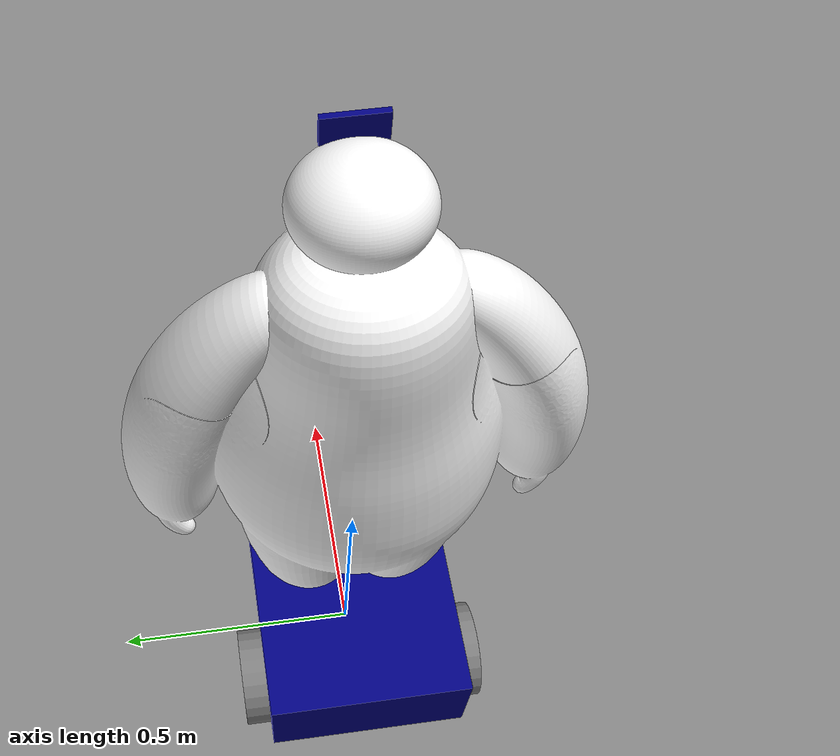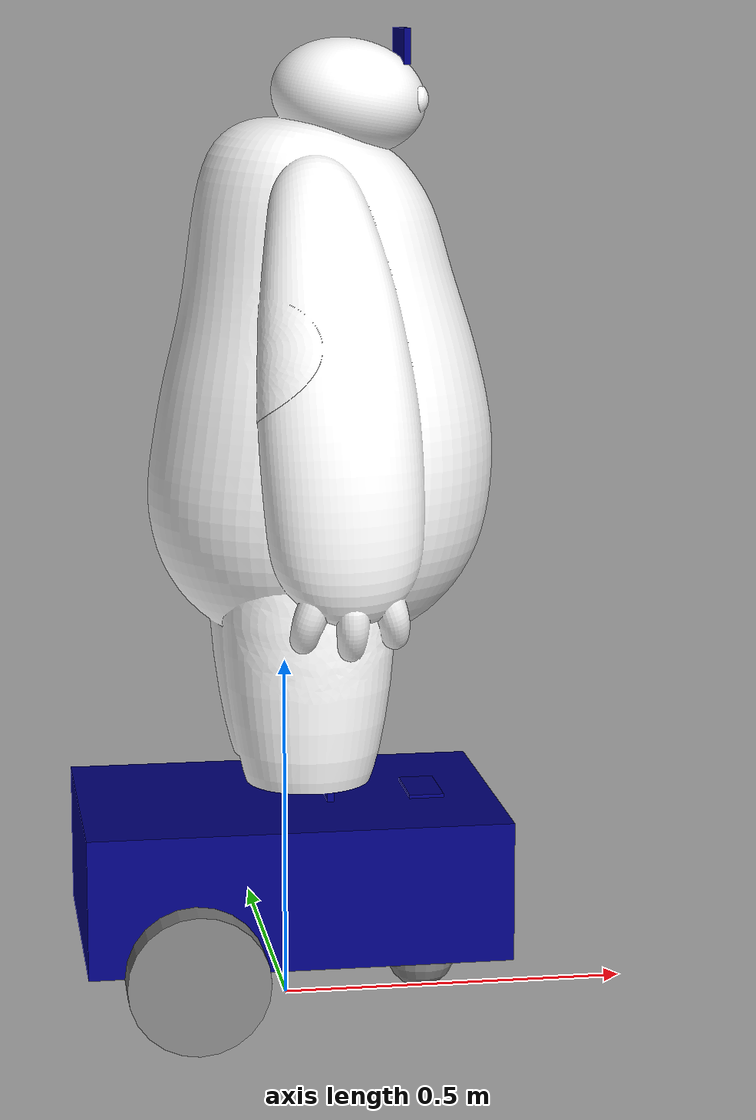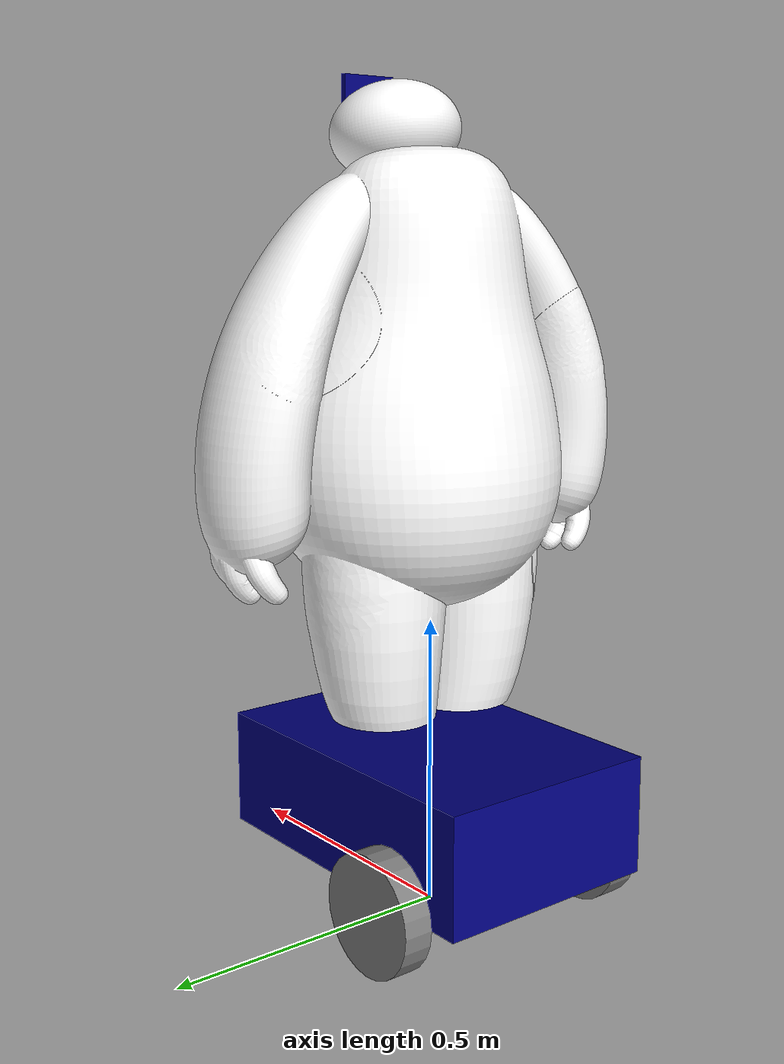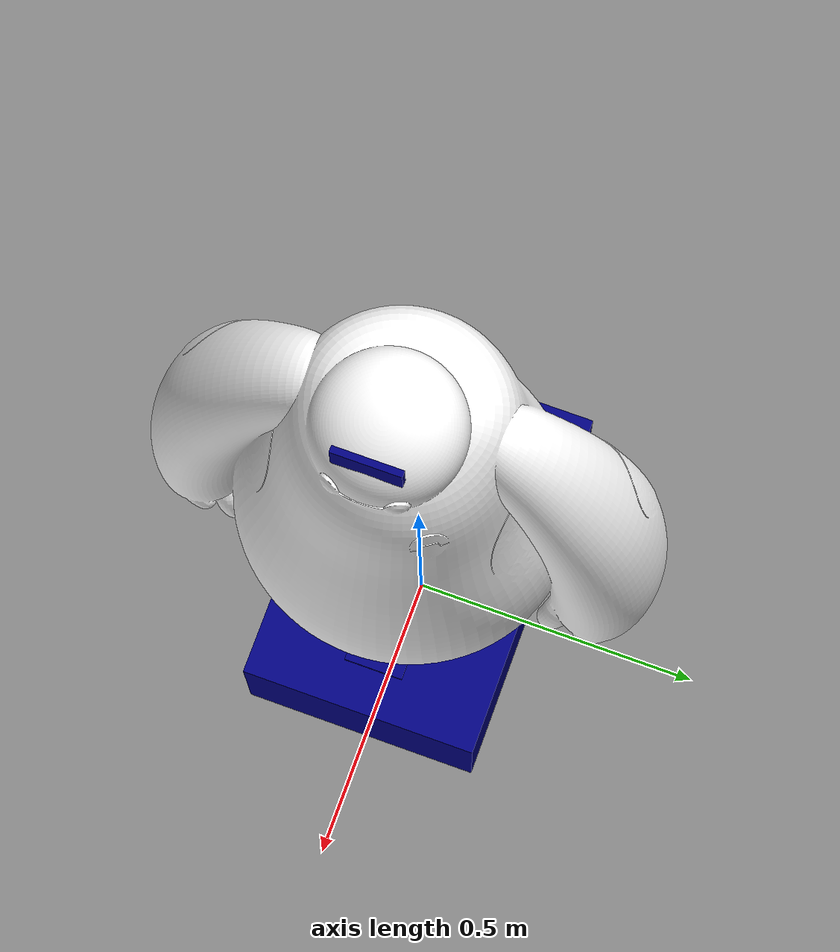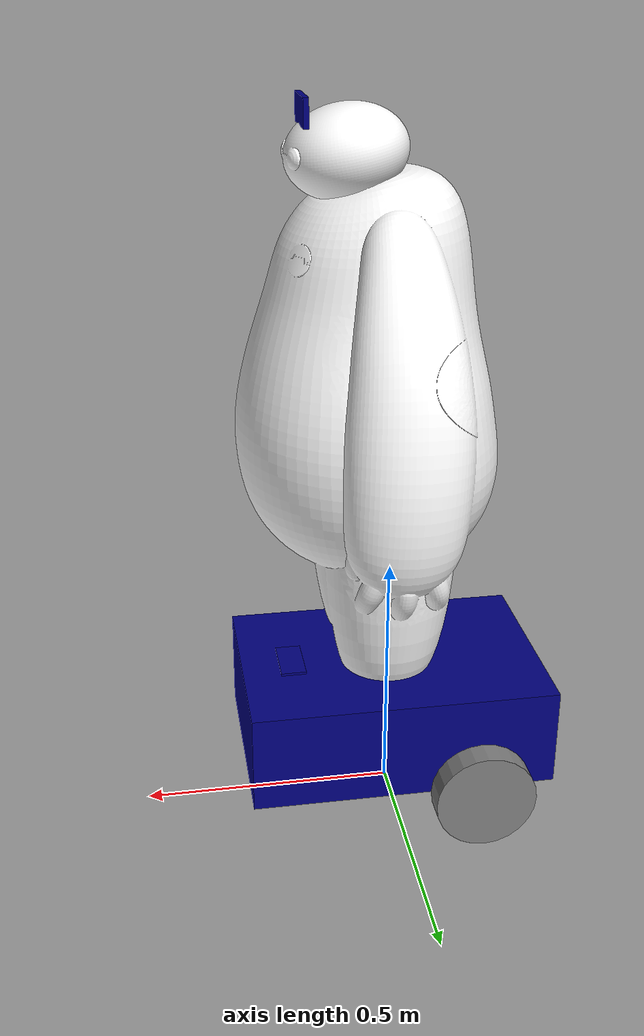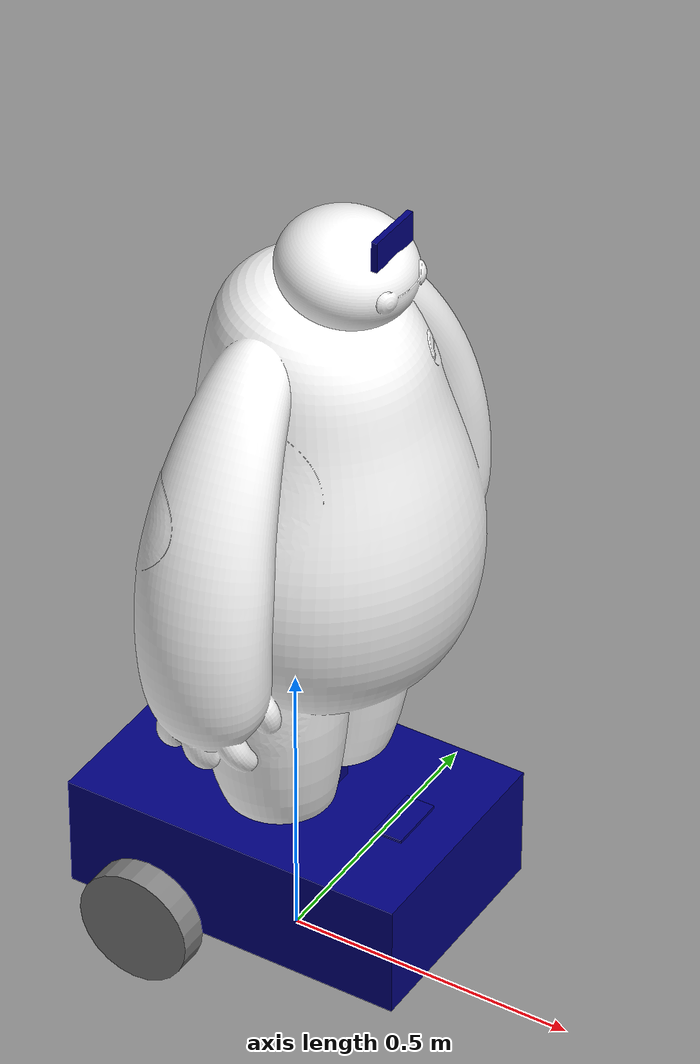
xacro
<?xml version="1.0"?>
<robot name="medibot" xmlns:xacro="http://www.ros.org/wiki/xacro">

    <xacro:include filename="common_properties.xacro" />
    <xacro:include filename="baymax.urdf.xacro" />
    <xacro:include filename="mobile_base.xacro" />
    <xacro:include filename="mobile_base_gazebo.xacro" />
    <xacro:include filename="camera_gazebo.xacro" />
    <xacro:include filename="lidar.xacro" />
    <xacro:include filename="imu.xacro" />

    <joint name="base_lider_joint" type="fixed">
        <parent link="base_link" />
        <child link="base_scan" />
        <origin xyz="${base_length/10} 0 ${base_height+camera_height/2}" rpy="0 0 0"/>
    </joint>

    <joint name="baymax_camera_joint" type="fixed">
        <parent link="baymax_link"/>
        <child link="camera_link"/>
        <origin xyz="0.05 0 0.8" rpy="0 0 0"/>
    </joint>
    <joint name="lider_baymax_joint" type="fixed">
        <parent link="base_scan" />
        <child link="baymax_link" />
        <origin xyz="${base_length/10} 0 ${base_height+camera_height}" rpy="0 0 0"/>
    </joint>
</robot>

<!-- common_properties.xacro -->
<robot xmlns:xacro="http://www.ros.org/wiki/xacro">

    <xacro:property name="base_length" value="0.6" />
    <xacro:property name="base_width" value="0.4" />
    <xacro:property name="base_height" value="0.2" />
    <xacro:property name="wheel_radius" value="0.1" />
    <xacro:property name="wheel_length" value="0.05" />

    <xacro:property name="body_length" value="0.5" />
    <xacro:property name="body_radius" value="0.1" />
    <xacro:property name="shoulder_length" value="0.1" />
    <xacro:property name="shoulder_width" value="0.4" />
    <xacro:property name="shoulder_height" value="0.2" />
    <xacro:property name="hand_height" value="0.2" />
    <xacro:property name="hand_radius" value="0.05" />
    <xacro:property name="head_radius" value="0.1" />

    <xacro:property name="camera_length" value="0.01" />
    <xacro:property name="camera_width" value="0.1" />
    <xacro:property name="camera_height" value="0.05" />

    <material name="blue">
        <color rgba="0 0 0.5 1" />
    </material>

    <material name="grey">
        <color rgba="0.5 0.5 0.5 1" />
    </material>

    <material name="yellow">
        <color rgba="1 1 0.5 1" />
    </material>

    <material name="orange">
        <color rgba="1.0 0.65 0.0 1.0" />
    </material>

    <material name="purple">
        <color rgba="0.5 0 1 1" />
    </material>

    <xacro:macro name="box_inertia" params="m l w h xyz rpy">
        <inertial>
            <origin xyz="${xyz}" rpy="${rpy}"/>
            <mass value="${m}"/>
            <inertia ixx="${(m/12)*(h*h+l*l)}" ixy="0.0" ixz="0.0"
                    iyy="${(m/12)*(w*w+l*l)}" iyz="0.0"
                    izz="${(m/12)*(w*w+h*h)}"/>
        </inertial>
    </xacro:macro>

    <xacro:macro name="cylinder_inertia" params="m r h xyz rpy">
        <inertial>
            <origin xyz="${xyz}" rpy="${rpy}"/>
            <mass value="${m}"/>
            <inertia ixx="${(m/12)*(3*r*r+h*h)}" ixy="0.0" ixz="0.0"
                    iyy="${(m/12)*(3*r*r+h*h)}" iyz="0.0"
                    izz="${(m/2)*(r*r)}"/>
        </inertial>
    </xacro:macro>

    <xacro:macro name="sphere_inertia" params="m r xyz rpy">
        <inertial>
            <origin xyz="${xyz}" rpy="${rpy}"/>
            <mass value="${m}"/>
            <inertia ixx="${(2/5)*m*(r*r)}" ixy="0.0" ixz="0.0"
                    iyy="${(2/5)*m*(r*r)}" iyz="0.0"
                    izz="${(2/5)*m*(r*r)}"/>
        </inertial>
    </xacro:macro>

</robot>

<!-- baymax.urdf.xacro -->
<robot xmlns:xacro="http://www.ros.org/wiki/xacro">
    <xacro:property name="scale_factor" value="0.007" />
    <link name="baymax_link">
        <visual>
        <geometry>
            <mesh filename="file:///home/nabil/ros2_ws/src/medibot/urdf/Baymax.STL" scale="${scale_factor} ${scale_factor} ${scale_factor}" />
        </geometry>
        <material name="white">
            <color rgba="1 1 1 1" />
        </material>
        <origin xyz="-0.1 0 ${base_height+wheel_radius+camera_height/2}" rpy="0 0 1.57" />
        </visual>
        <collision>
        <geometry>
            <mesh filename="file:///home/nabil/ros2_ws/src/medibot/urdf/Baymax.STL" scale="${scale_factor} ${scale_factor} ${scale_factor}" />
        </geometry>
        <origin xyz="-0.1 0 ${base_height+wheel_radius+camera_height/2}" rpy="0 0 1.57" />
        </collision>
        <inertial>
        <mass value="1.0" />
        <origin xyz="0 0 0" rpy="0 0 0" />
        <inertia ixx="0.01" ixy="0.0" ixz="0.0" iyy="0.01" iyz="0.0" izz="0.01" />
        </inertial>
    </link>
</robot>

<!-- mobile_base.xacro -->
<robot name="medibot" xmlns:xacro="http://www.ros.org/wiki/xacro">

    <link name="base_footprint" />

    <link name="base_link">
        <visual>
            <geometry>
                <box size="${base_length} ${base_width} ${base_height}" />
            </geometry>
            <origin xyz="0 0 ${base_height / 2.0}" rpy="0 0 0" />
            <material name="blue" />
        </visual>
        <collision>
            <geometry>
                <box size="${base_length} ${base_width} ${base_height}" />
            </geometry>
            <origin xyz="0 0 ${base_height / 2.0}" rpy="0 0 0" />
        </collision>
        <xacro:box_inertia m="5.0" l="${base_length}" w="${base_width}" h="${base_height}" xyz="0 0 ${base_height / 2.0}" rpy="0 0 0" />
    </link>

    <xacro:macro name="wheel_link" params="prefix">
        <link name="${prefix}_wheel_link">
            <visual>
                <geometry>
                    <cylinder radius="${wheel_radius}" length="${wheel_length}" />
                </geometry>
                <origin xyz="0 0 0" rpy="${pi / 2.0} 0 0" />
                <material name="grey" />
            </visual>
            <collision>
                <geometry>
                    <cylinder radius="${wheel_radius}" length="${wheel_length}" />
                </geometry>
                <origin xyz="0 0 0" rpy="${pi / 2.0} 0 0" />
            </collision>
            <xacro:cylinder_inertia m="1.0" r="${wheel_radius}" h="${wheel_length}"
                                xyz="0 0 0" rpy="${pi / 2.0} 0 0" />
        </link>
    </xacro:macro>

    <xacro:wheel_link prefix="right" />
    <xacro:wheel_link prefix="left" />

    <link name="caster_wheel_link">
        <visual>
            <geometry>
                <sphere radius="${wheel_radius / 2.0}" />
            </geometry>
            <origin xyz="0 0 0" rpy="0 0 0" />
            <material name="grey" />
        </visual>
        <collision>
            <geometry>
                <sphere radius="${wheel_radius / 2.0}" />
            </geometry>
            <origin xyz="0 0 0" rpy="0 0 0" />
        </collision>
        <xacro:sphere_inertia m="0.5" r="${wheel_radius / 2.0}" xyz="0 0 0" rpy="0 0 0" />
    </link>

    <joint name="base_joint" type="fixed">
        <parent link="base_footprint" />
        <child link="base_link" />
        <origin xyz="0 0 ${wheel_radius}" rpy="0 0 0"/>
    </joint>

    <joint name="wheel_right_joint" type="continuous">
        <parent link="base_link" />
        <child link="right_wheel_link" />
        <origin xyz="${-base_length / 4.0} ${-(base_width + wheel_length) / 2.0} 0" rpy="0 0 0" />
        <axis xyz="0 1 0" />
    </joint>

    <joint name="wheel_left_joint" type="continuous">
        <parent link="base_link" />
        <child link="left_wheel_link" />
        <origin xyz="${-base_length / 4.0} ${(base_width + wheel_length) / 2.0} 0" rpy="0 0 0" />
        <axis xyz="0 1 0" />
    </joint>

    <joint name="base_caster_wheel_joint" type="fixed">
        <parent link="base_link" />
        <child link="caster_wheel_link" />
        <origin xyz="${base_length / 3.0} 0 ${-wheel_radius / 2.0}" rpy="0 0 0" />
    </joint>

</robot>

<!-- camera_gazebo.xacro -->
<robot name="medibot" xmlns:xacro="http://www.ros.org/wiki/xacro">

    <!--camera link-->
    <link name="camera_link">
        <visual>
            <geometry>
                <box size="${camera_length} ${camera_width} ${camera_height}"/>
            </geometry>
            <material name="blue" />
        </visual>
        <collision>
            <geometry>
                <box size="${camera_length} ${camera_width} ${camera_height}"/>
            </geometry>
        </collision>
        <xacro:box_inertia m="0.1" l="${camera_length}" w="${camera_width}" h="${camera_height}"
                            xyz="0 0 0" rpy="0 0 0" />
    </link>

    <gazebo reference="camera_link">
        <material>
            Gazebo/Blue
        </material>
        <sensor name="camera_sensor" type="camera">
            <pose>0 0 0 0 0 0</pose>
            <visualize>true</visualize>
            <update_rate>10.0</update_rate>
            <plugin name="camera_controller" filename="libgazebo_ros_camera.so">
                <frame_name>camera_link</frame_name>
              </plugin>
        </sensor>
    </gazebo>
</robot>

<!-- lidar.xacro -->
<robot name="medibot" xmlns:xacro="http://www.ros.org/wiki/xacro">
    <xacro:property name="camera_length" value="0.01" />
    <xacro:property name="camera_width" value="0.1" />
    <xacro:property name="camera_height" value="0.05" />

    <!--camera link-->
    <link name="base_scan">
        <visual>
            <geometry>
                <box size="${camera_length} ${camera_width} ${camera_height}"/>
            </geometry>
            <material name="blue" />
        </visual>
        <collision>
            <geometry>
                <box size="${camera_length} ${camera_width} ${camera_height}"/>
            </geometry>
        </collision>
        <xacro:box_inertia m="0.1" l="${camera_length}" w="${camera_width}" h="${camera_height}"
                            xyz="0 0 0" rpy="0 1.57 0" />
    </link>

    <gazebo reference="base_scan">
        <sensor type="ray" name="lidar_sensor">
            <pose>0 0 0 0 0 0</pose>
            <visualize>true</visualize>  <!-- This enables visualization of the scan in Gazebo -->
            <update_rate>5</update_rate> <!-- Frequency of the scan -->
            <ray>
                <scan>
                    <horizontal>
                        <samples>720</samples>  <!-- Number of scan points (angular resolution) -->
                        <resolution>1</resolution>
                        <min_angle>0</min_angle>  <!-- Start scanning from -90 degrees -->
                        <max_angle>6.28</max_angle>  <!-- End scanning at +90 degrees -->
                    </horizontal>
                </scan>
                <range>
                    <min>0.2</min>  <!-- Minimum range of the LiDAR -->
                    <max>30.0</max>  <!-- Maximum range of the LiDAR -->
                </range>
            </ray>
            <plugin name="turtlebot3_laserscan" filename="libgazebo_ros_ray_sensor.so">
                <ros>
                    <remapping>/turtlebot3_laserscan/out:=/scan</remapping>
                </ros>
                <output_type>sensor_msgs/LaserScan</output_type>
                <frame_name>base_scan</frame_name>
                <topic>/scan</topic>
            </plugin>
        </sensor>
    </gazebo>
</robot>

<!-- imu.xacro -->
<robot name="medibot" xmlns:xacro="http://www.ros.org/wiki/xacro">
    <xacro:property name="camera_length" value="0.01" />
    <xacro:property name="camera_width" value="0.1" />
    <xacro:property name="camera_height" value="0.05" />

    <!--camera link-->
    <link name="imu_link">
        <visual>
            <geometry>
                <box size="${camera_length} ${camera_width} ${camera_height}"/>
            </geometry>
            <material name="blue" />
        </visual>
        <collision>
            <geometry>
                <box size="${camera_length} ${camera_width} ${camera_height}"/>
            </geometry>
        </collision>
        <xacro:box_inertia m="0.1" l="${camera_length}" w="${camera_width}" h="${camera_height}"
                            xyz="0 0 0" rpy="0 1.57 0" />
    </link>

    <joint name="base_imu_joint" type="fixed">
        <parent link="base_link"/>
        <child link="imu_link"/>
        <origin xyz="${base_length/2-camera_width} 0 ${base_height}" rpy="0 1.57 0"/>
    </joint>

    <gazebo reference="imu_link">
        <sensor type="imu" name="imu_sensor">
            <!-- ensure the sensor is active (required) -->
            <always_on>true</always_on>
            <update_rate>30</update_rate>
            <plugin name="my_imu_plugin" filename="libgazebo_ros_imu_sensor.so">
                <ros>
                    <remapping>~/out:=imu</remapping>
                </ros>
            </plugin>
        </sensor>
    </gazebo>
</robot>
